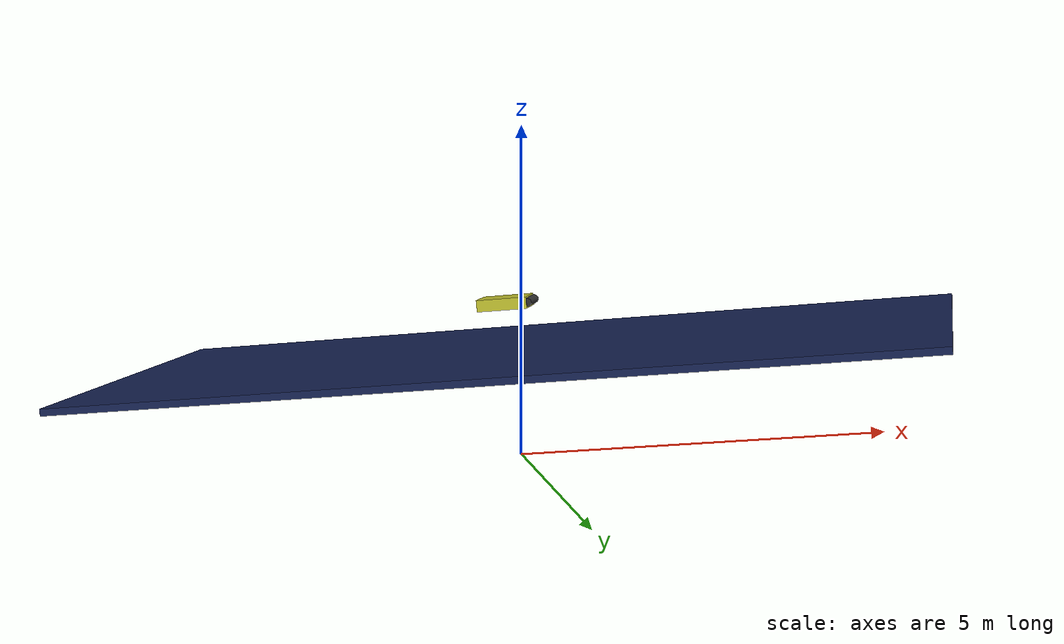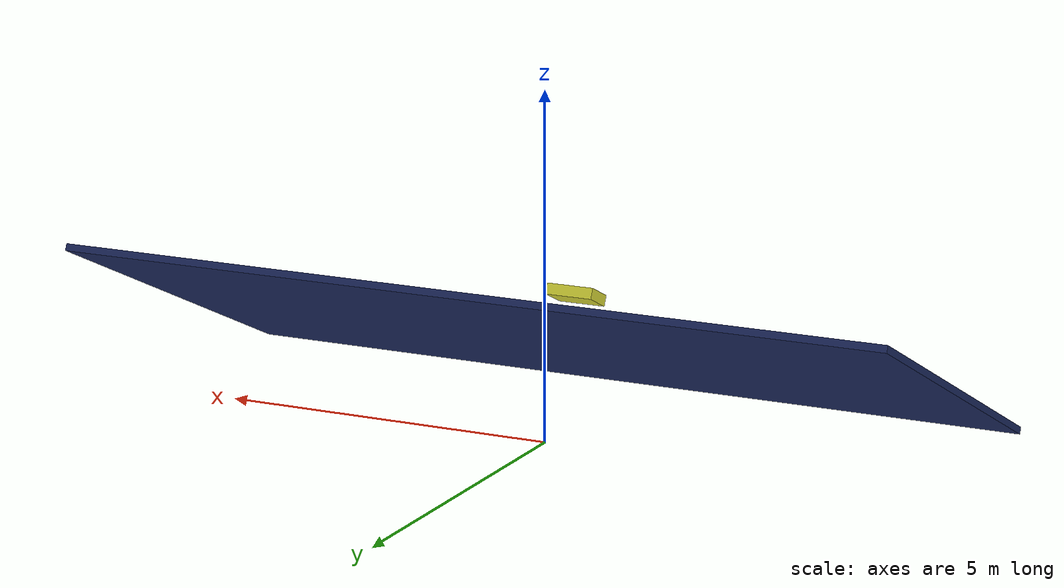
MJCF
<mujoco model="solar_panel_cleaning_crawler">
  <compiler angle="radian" coordinate="local"/>
  <option gravity="0 0 -9.81" timestep="0.002"/>
  <worldbody>
    <!-- Inclined Solar Array (tilted 25 degrees) -->
    <geom name="solar_array" type="box" size="6 3 0.05" pos="0 0 1.5" quat="0.9763 0.2164 0 0" rgba="0.1 0.15 0.35 1" friction="0.4 0.005 0.0001"/>
    <body name="crawler" pos="0 -1.0 1.9" quat="0.9763 0.2164 0 0">
      <freejoint name="crawler_joint"/>
      <geom name="crawler_chassis" type="box" size="0.35 0.25 0.08" rgba="0.8 0.8 0.2 1" mass="12.0"/>
      <geom name="cleaning_brush" type="cylinder" size="0.06 0.24" pos="0.36 0 0" quat="0.7071 0.7071 0 0" rgba="0.2 0.2 0.2 1" mass="2.0"/>
    </body>
  </worldbody>
</mujoco>
